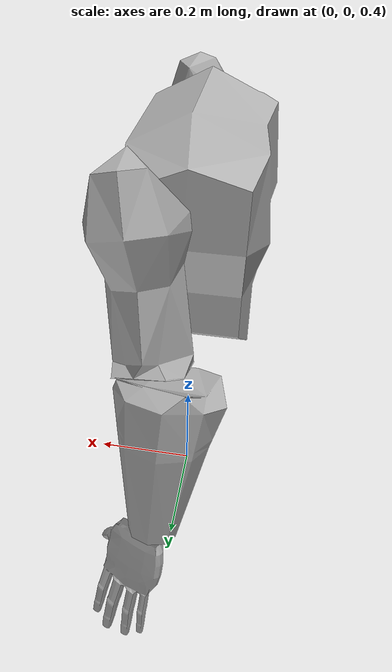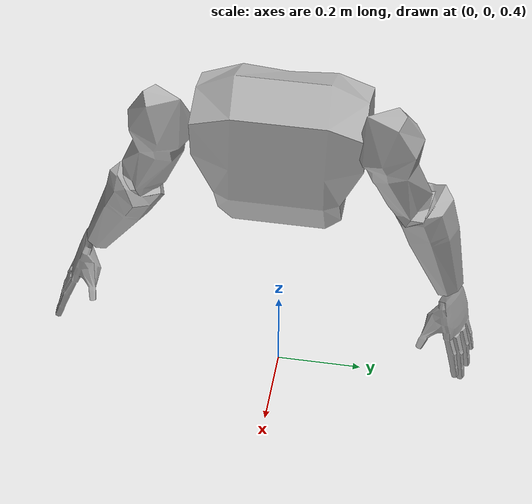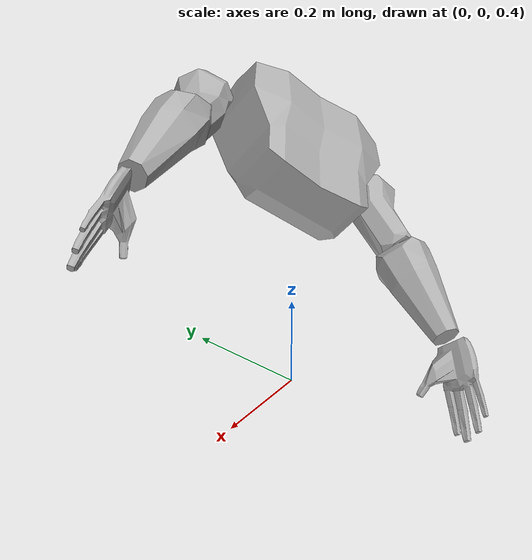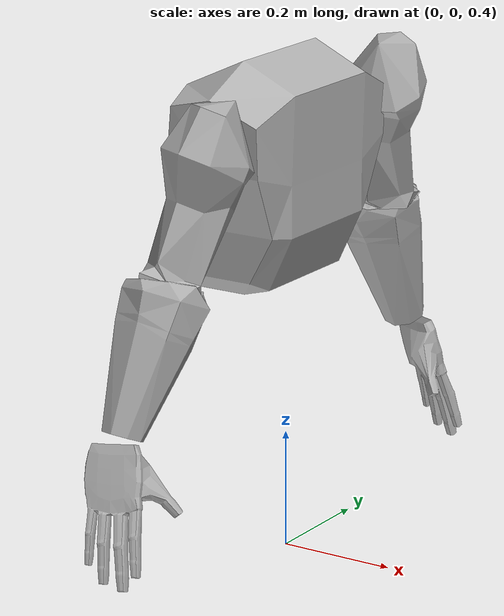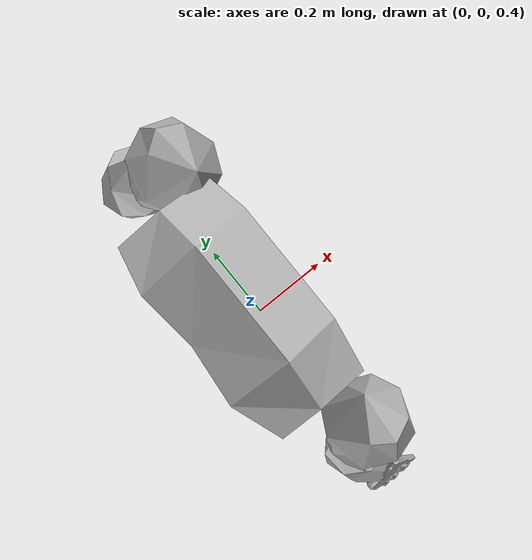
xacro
<?xml version="1.0"?>
<robot xmlns:xacro="http://www.ros.org/wiki/xacro" name="upper_body">

	<!-- meshes path -->
	<xacro:property name="meshes_path" value="package://human_description/meshes"/>

	<!-- world attachment -->
	<link name="world"/>

	<joint name="standWorld_joint" type="fixed">
		<parent link="world"/>
		<origin xyz="0 0 1" rpy="0 0 0"/>
		<child link="upper_torso"/>
	</joint>

	<!-- LINKS -->
	<!-- torso -->
	<link name="upper_torso">
		<inertial>
			<mass value="28.71"/>
			<inertia ixx="0.679888688" ixy="0" ixz="0" iyy="0.679888688" iyz="0" izz="0.390814875" />
			<origin/>
		</inertial>

		<visual>
			<origin xyz=".08 .02 .05" rpy="1.57 0 -1.57"/>
			<geometry>
				<mesh filename="${meshes_path}/upper_torso.dae"/>
			</geometry>
			<material name="Grey">
				<color rgba="0.7 0.7 0.7 1.0"/>
			</material>
		</visual>

		<collision>
			<origin xyz="0 0 0" rpy="0 0 0" />
			<geometry>
				<mesh filename="${meshes_path}/upper_torso.dae"/>
			</geometry>
			<verbose value="Yes" />
		</collision>
	</link>

	<gazebo reference="upper_torso">
		<material>Gazebo/White</material>
	</gazebo>

	<!--arms-->
	<link name="left_upper_arm">
		<inertial>
			<mass value="2.1"/>
			<inertia ixx="0.018021675" ixy="0" ixz="0" iyy="0.018021675" iyz="0" izz="0.002625" />
			<origin/>
		</inertial>

		<visual>
			<origin xyz="-.05 -.042 -.13" rpy = "1.57 1.57 1.57"/>
			<geometry>
				<mesh filename="${meshes_path}/left_upper_arm.stl"/>
			</geometry>
			<material name="Grey">
				<color rgba="0.7 0.7 0.7 1.0"/>
			</material>
		</visual>

		<collision>
			<origin xyz="0 0 0" rpy="0 0 0" />
			<geometry>
				<mesh filename="${meshes_path}/left_upper_arm.stl"/>
			</geometry>
			<verbose value="Yes" />
		</collision>
	</link>

	<gazebo reference="left_upper_arm">
		<material>Gazebo/White</material>
	</gazebo>

	<link name="virtual_left_upper_arm">
	   <inertial>
		 <origin xyz="0 0 0" rpy="0 0 0"/>
		 <mass value="1"/>
		 <inertia ixx="100"  ixy="0"  ixz="0" iyy="100" iyz="0" izz="100" />
	   </inertial>

	   <visual>
		 <origin xyz="0 0 0" rpy="0 0 0" />
		 <geometry>
		   <box size=".0001 .0001 .0001" />
		 </geometry>
		 <material name="Cyan">
		   <color rgba="0 255 255 1.0"/>
		 </material>
	   </visual>

	   <collision>
		 <origin xyz="0 0 0" rpy="0 0 0"/>
		 <geometry>
		   <box size=".0001 .0001 .0001" />
		 </geometry>
	   </collision>
	</link>

	<gazebo reference="virtual_left_upper_arm">
		<material>Gazebo/Black</material>
	</gazebo>

	<link name="right_upper_arm">
	  <inertial>
		<mass value="2.1"/>
		<inertia ixx="0.018021675" ixy="0" ixz="0" iyy="0.018021675" iyz="0" izz="0.002625" />
		<origin/>
	  </inertial>

	  <visual>
		<origin xyz="-.8 .03 -.155" rpy = "1.57 -1.57 1.57"/>
		<geometry>
		   <mesh filename="${meshes_path}/right_upper_arm.stl"/>
		</geometry>
	  <material name="Grey">
		<color rgba="0.7 0.7 0.7 1.0"/>
	  </material>
	  </visual>

	  <collision>
		<origin xyz="0 0 0" rpy="0 0 0" />
		<geometry>
		   <mesh filename="${meshes_path}/right_upper_arm.stl"/>
		</geometry>
		<verbose value="Yes" />
	  </collision>
	</link>

	<gazebo reference="right_upper_arm">
		<material>Gazebo/White</material>
	</gazebo>

	<link name="virtual_right_upper_arm">
	   <inertial>
		 <origin xyz="0 0 0" rpy="0 0 0"/>
		 <mass value="1"/>
		 <inertia ixx="100"  ixy="0"  ixz="0" iyy="100" iyz="0" izz="100" />
	   </inertial>

	   <visual>
		 <origin xyz="0 0 0" rpy="0 0 0" />
		 <geometry>
		   <box size=".0001 .0001 .0001" />
		 </geometry>
		 <material name="Cyan">
		   <color rgba="0 255 255 1.0"/>
		 </material>
	   </visual>

	   <collision>
		 <origin xyz="0 0 0" rpy="0 0 0"/>
		 <geometry>
		   <box size=".0001 .0001 .0001" />
		 </geometry>
	   </collision>
	</link>

	<gazebo reference="virtual_right_upper_arm">
		<material>Gazebo/Black</material>
	</gazebo>

	<link name="left_lower_arm">
	  <inertial>
		<mass value="1.2"/>
		<inertia ixx="0.0066817" ixy="0" ixz="0" iyy="0.0066817" iyz="0" izz="0.0011616" />
		<origin/>
	  </inertial>

	  <visual>
		<origin xyz="-.09 -.01 -.09" rpy = "0 1.57 0"/>
		<geometry>
		   <mesh filename="${meshes_path}/left_lower_arm.stl"/>
		</geometry>
		<material name="Grey">
			<color rgba="0.7 0.7 0.7 1.0"/>
		</material>
	  </visual>

	  <collision>
		<origin xyz="0 0 0" rpy="0 0 0" />
		<geometry>
		   <mesh filename="${meshes_path}/left_lower_arm.stl"/>
		</geometry>
		<verbose value="Yes" />
	  </collision>
	</link>

	<gazebo reference="right_lower_arm">
		<material>Gazebo/White</material>
	</gazebo>

	<link name="right_lower_arm">
	  <inertial>
		<mass value="1.2"/>
		<inertia ixx="0.0066817" ixy="0" ixz="0" iyy="0.0066817" iyz="0" izz="0.0011616" />
		<origin/>
	  </inertial>

	  <visual>
		<origin xyz=".07 -.07 -.29" rpy = "0 -1.57 0"/>
		<geometry>
		   <mesh filename="${meshes_path}/right_lower_arm.stl"/>
		</geometry>
		<material name="Grey">
			<color rgba="0.7 0.7 0.7 1.0"/>
		</material>
	  </visual>

	  <collision>
		<origin xyz="0 0 0" rpy="0 0 0" />
		<geometry>
		   <mesh filename="${meshes_path}/right_lower_arm.stl"/>
		</geometry>
		<verbose value="Yes" />
	  </collision>
	</link>

	<gazebo reference="left_lower_arm">
		<material>Gazebo/White</material>
	</gazebo>

	<link name="left_hand">
	  <inertial>
		<mass value=".5"/>
		<inertia ixx="0.0004418" ixy="0" ixz="0" iyy="0.0004418" iyz="0" izz="0.0004418" />
		<origin/>
	  </inertial>

	  <visual>
		<origin xyz="-.07 .04 -.049" rpy = "0 1.57 0"/>
		<geometry>
		   <mesh filename="${meshes_path}/left_hand.stl"/>
		</geometry>
		<material name="Grey">
			<color rgba="0.7 0.7 0.7 1.0"/>
		</material>
	  </visual>

	  <collision>
		<origin xyz="0 0 0" rpy="0 0 0" />
		<geometry>
		   <mesh filename="${meshes_path}/left_hand.stl"/>
		</geometry>
		<verbose value="Yes" />
	  </collision>
	</link>

	<gazebo reference="left_hand">
		<material>Gazebo/White</material>
	</gazebo>

	<link name="right_hand">
	  <inertial>
		<mass value=".5"/>
		<inertia ixx="0.0004418" ixy="0" ixz="0" iyy="0.0004418" iyz="0" izz="0.0004418" />
		<origin/>
	  </inertial>

	  <visual>
		<origin xyz="-.82 .22 -.058" rpy = "0 -1.57 2.8"/>
		<geometry>
		   <mesh filename="${meshes_path}/right_hand.stl"/>
		</geometry>
		<material name="Grey">
			<color rgba="0.7 0.7 0.7 1.0"/>
		</material>
	  </visual>

	  <collision>
		<origin xyz="0 0 0" rpy="0 0 0" />
		<geometry>
		   <mesh filename="${meshes_path}/right_hand.stl"/>
		</geometry>
		<verbose value="Yes" />
	  </collision>
	</link>

	<gazebo reference="right_hand">
		<material>Gazebo/White</material>
	</gazebo>

	<!-- JOINTS -->

	<!--arms circumduction-->
	 <joint name="left_shoulder_circ_joint" type="continuous">
		<origin xyz="0 .25 .225" rpy=".4 0 0"/>
		<axis xyz= "0 1 0"/>
		<!--limit lower= "-0.261799388" upper= "0.261799388" effort = "2.645" velocity="6"/-->
		<parent link="upper_torso"/>
		<child link="virtual_left_upper_arm"/>
	 </joint>

	 <joint name="right_shoulder_circ_joint" type="continuous">
		<origin xyz="0 -.25 .225" rpy="-.4 0 0"/>
		<axis xyz= "0 1 0"/>
		<!--limit lower= "-0.261799388" upper= "0.261799388" effort = "2.645" velocity="6"/-->
		<parent link="upper_torso"/>
		<child link="virtual_right_upper_arm"/>
	 </joint>

	<!--arms abduction (vit. man position)-->
	 <joint name="left_shoulder_abduction_joint" type="revolute">
		<origin xyz="0 0 0" rpy="0 0 0"/>
		<axis xyz= "1 0 0"/>
		<limit lower= "-1.57" upper= "1.57" effort = "2.645" velocity="6"/>
		<parent link="virtual_left_upper_arm"/>
		<child link="left_upper_arm"/>
	 </joint>

	 <joint name="right_shoulder_abduction_joint" type="revolute">
		<origin xyz="0 0 0" rpy=" 0 0 0"/>
		<axis xyz= "1 0 0"/>
		<limit lower= "-1.57" upper= "1.57" effort = "2.645" velocity="6"/>
		<parent link="virtual_right_upper_arm"/>
		<child link="right_upper_arm"/>
	 </joint>

	 <!--elbow extension and flexion-->
	 <joint name="left_elbow_flex_joint" type="revolute">
		<origin xyz="0 -.1 -.28" rpy="0 0 0"/>
		<axis xyz= "0 1 0"/>
		<limit lower= "-1.57079633" upper= "1.57" effort = "2.645" velocity="6"/>
		<parent link="left_upper_arm"/>
		<child link="left_lower_arm"/>
	 </joint>

	<joint name="right_elbow_flex_joint" type="revolute">
		<origin xyz="0 .07 -.29" rpy="0 0 0"/>
		<axis xyz= "0 1 0"/>
		<limit lower= "-1.57079633" upper= "1.57" effort = "2.645" velocity="6"/>
		<parent link="right_upper_arm"/>
		<child link="right_lower_arm"/>
	 </joint>

	 <!--wrists flexion-->
	 <joint name="left_wrist_flex_joint" type="fixed">
		<origin xyz="0 0 -.247" rpy="0 0 0"/>
		<parent link="left_lower_arm"/>
		<child link="left_hand"/>
	 </joint>

	<joint name="right_wrist_flex_joint" type="fixed">
		<origin xyz="0 0 -.247" rpy="0 0 0"/>
		<parent link="right_lower_arm"/>
		<child link="right_hand"/>
	 </joint>

</robot>
